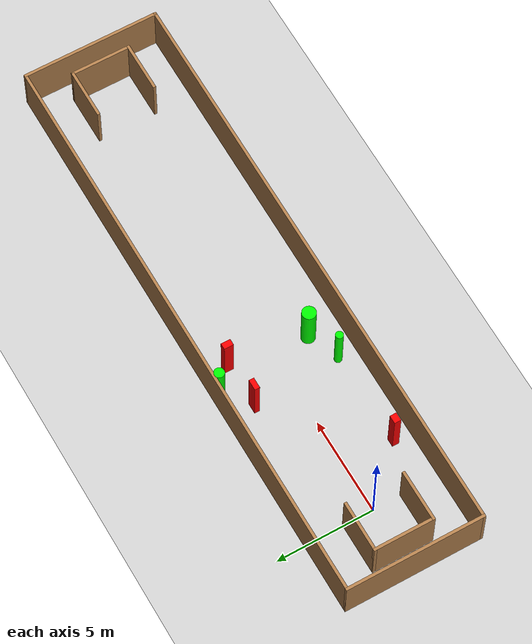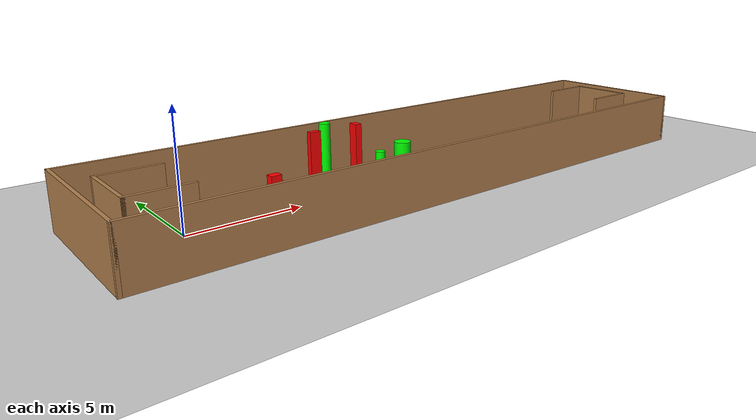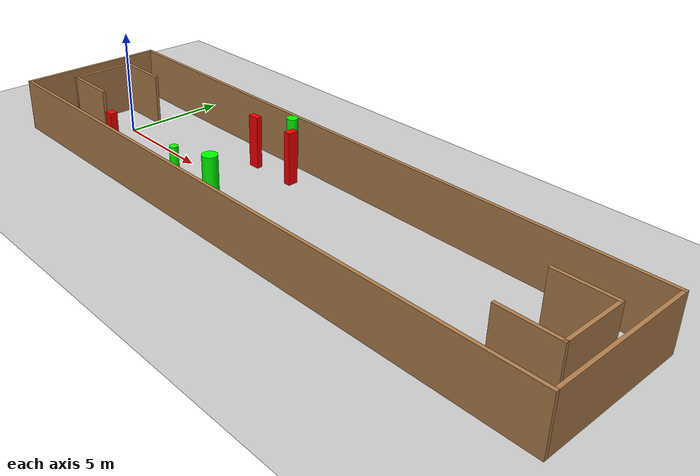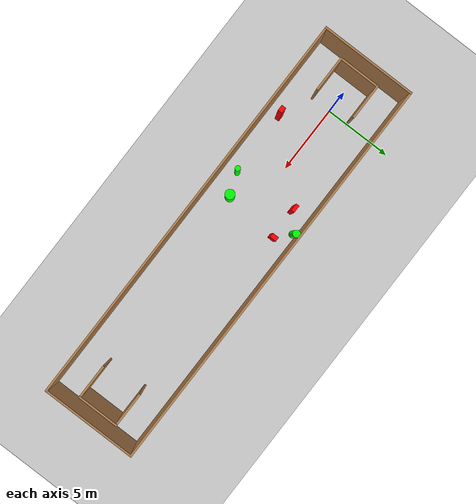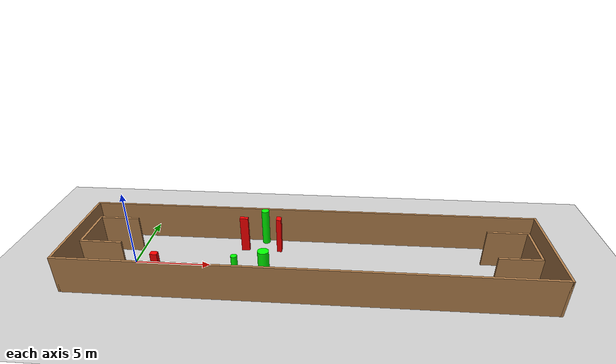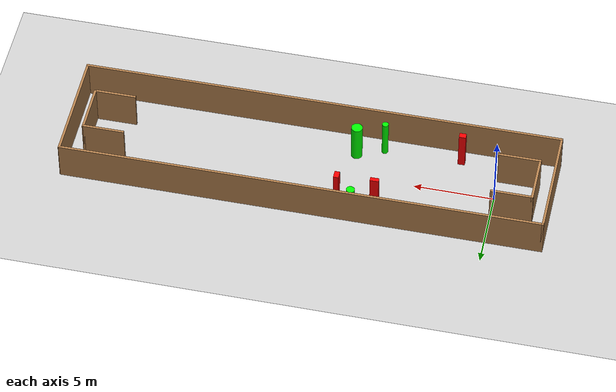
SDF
<sdf version="1.7">
 <world name="default">
  <light name="sun" type="directional">
   <pose>0 0 10 0 -0 0</pose>
   <diffuse>0.8 0.8 0.8 1</diffuse>
   <specular>0.2 0.2 0.2 1</specular>
   <attenuation>
    <range>1000</range>
    <constant>0.9</constant>
    <linear>0.01</linear>
    <quadratic>0.001</quadratic>
   </attenuation>
   <direction>-0.5 0.1 -0.9</direction>
   <spot><inner_angle>0</inner_angle><outer_angle>0</outer_angle><falloff>0</falloff></spot>
  </light>
  <model name="ground_plane">
   <static>1</static>
   <link name="link">
    <collision name="collision">
     <geometry><plane><normal>0 0 1</normal><size>100 100</size></plane></geometry>
     <surface>
      <contact><collide_bitmask>65535</collide_bitmask></contact>
      <friction><ode><mu>100</mu><mu2>50</mu2></ode></friction>
     </surface>
    </collision>
    <visual name="visual">
     <cast_shadows>0</cast_shadows>
     <geometry><plane><normal>0 0 1</normal><size>100 100</size></plane></geometry>
     <material>
      <script><uri>file://media/materials/scripts/gazebo.material</uri><name>Gazebo/Grey</name></script>
     </material>
    </visual>
   </link>
  </model>
  <gravity>0 0 -9.8</gravity>
  <magnetic_field>6e-06 2.3e-05 -4.2e-05</magnetic_field>
  <atmosphere type="adiabatic"/>
  <physics type="ode">
   <max_step_size>0.001</max_step_size>
   <real_time_factor>1</real_time_factor>
   <real_time_update_rate>1000</real_time_update_rate>
  </physics>
  <scene><ambient>0.4 0.4 0.4 1</ambient><background>0.7 0.7 0.7 1</background><shadows>1</shadows></scene>
  <spherical_coordinates>
   <surface_model>EARTH_WGS84</surface_model>
   <latitude_deg>0</latitude_deg>
   <longitude_deg>0</longitude_deg>
   <elevation>0</elevation>
   <heading_deg>0</heading_deg>
  </spherical_coordinates>
  <model name="my_base_walls">
   <link name="Wall_0">
    <collision name="Wall_0_Collision">
     <geometry><box><size>7.15 0.15 2.5</size></box></geometry>
     <pose>0 0 1.25 0 -0 0</pose>
    </collision>
    <visual name="Wall_0_Visual">
     <pose>0 0 1.25 0 -0 0</pose>
     <geometry><box><size>7.15 0.15 2.5</size></box></geometry>
     <material>
      <script><uri>file://media/materials/scripts/gazebo.material</uri><name>Gazebo/Wood</name></script>
      <ambient>1 1 1 1</ambient>
     </material>
     <meta><layer>0</layer></meta>
    </visual>
    <pose>-15 0 0 0 -0 1.5708</pose>
   </link>
   <link name="Wall_10">
    <collision name="Wall_10_Collision">
     <geometry><box><size>2.65 0.15 2.5</size></box></geometry>
     <pose>0 0 1.25 0 -0 0</pose>
    </collision>
    <visual name="Wall_10_Visual">
     <pose>0 0 1.25 0 -0 0</pose>
     <geometry><box><size>2.65 0.15 2.5</size></box></geometry>
     <material>
      <script><uri>file://media/materials/scripts/gazebo.material</uri><name>Gazebo/Wood</name></script>
      <ambient>1 1 1 1</ambient>
     </material>
     <meta><layer>0</layer></meta>
    </visual>
    <pose>-12.75 -1.5 0 0 -0 0</pose>
   </link>
   <link name="Wall_12">
    <collision name="Wall_12_Collision">
     <geometry><box><size>2.65 0.15 2.5</size></box></geometry>
     <pose>0 0 1.25 0 -0 0</pose>
    </collision>
    <visual name="Wall_12_Visual">
     <pose>0 0 1.25 0 -0 0</pose>
     <geometry><box><size>2.65 0.15 2.5</size></box></geometry>
     <material>
      <script><uri>file://media/materials/scripts/gazebo.material</uri><name>Gazebo/Wood</name></script>
      <ambient>1 1 1 1</ambient>
     </material>
     <meta><layer>0</layer></meta>
    </visual>
    <pose>-12.75 1.5 0 0 -0 0</pose>
   </link>
   <link name="Wall_14">
    <collision name="Wall_14_Collision">
     <geometry><box><size>3.15 0.15 2.5</size></box></geometry>
     <pose>0 0 1.25 0 -0 0</pose>
    </collision>
    <visual name="Wall_14_Visual">
     <pose>0 0 1.25 0 -0 0</pose>
     <geometry><box><size>3.15 0.15 2.5</size></box></geometry>
     <material>
      <script><uri>file://media/materials/scripts/gazebo.material</uri><name>Gazebo/Wood</name></script>
      <ambient>1 1 1 1</ambient>
     </material>
     <meta><layer>0</layer></meta>
    </visual>
    <pose>14 0 0 0 -0 -1.5708</pose>
   </link>
   <link name="Wall_15">
    <collision name="Wall_15_Collision">
     <geometry><box><size>2.65 0.15 2.5</size></box></geometry>
     <pose>0 0 1.25 0 -0 0</pose>
    </collision>
    <visual name="Wall_15_Visual">
     <pose>0 0 1.25 0 -0 0</pose>
     <geometry><box><size>2.65 0.15 2.5</size></box></geometry>
     <material>
      <script><uri>file://media/materials/scripts/gazebo.material</uri><name>Gazebo/Wood</name></script>
      <ambient>1 1 1 1</ambient>
     </material>
     <meta><layer>0</layer></meta>
    </visual>
    <pose>12.75 -1.5 0 0 -0 3.14159</pose>
   </link>
   <link name="Wall_17">
    <collision name="Wall_17_Collision">
     <geometry><box><size>2.65 0.15 2.5</size></box></geometry>
     <pose>0 0 1.25 0 -0 0</pose>
    </collision>
    <visual name="Wall_17_Visual">
     <pose>0 0 1.25 0 -0 0</pose>
     <geometry><box><size>2.65 0.15 2.5</size></box></geometry>
     <material>
      <script><uri>file://media/materials/scripts/gazebo.material</uri><name>Gazebo/Wood</name></script>
      <ambient>1 1 1 1</ambient>
     </material>
     <meta><layer>0</layer></meta>
    </visual>
    <pose>12.75 1.5 0 0 -0 3.14159</pose>
   </link>
   <link name="Wall_2">
    <collision name="Wall_2_Collision">
     <geometry><box><size>30.15 0.15 2.5</size></box></geometry>
     <pose>0 0 1.25 0 -0 0</pose>
    </collision>
    <visual name="Wall_2_Visual">
     <pose>0 0 1.25 0 -0 0</pose>
     <geometry><box><size>30.15 0.15 2.5</size></box></geometry>
     <material>
      <script><uri>file://media/materials/scripts/gazebo.material</uri><name>Gazebo/Wood</name></script>
      <ambient>1 1 1 1</ambient>
     </material>
     <meta><layer>0</layer></meta>
    </visual>
    <pose>-0 -3.5 0 0 -0 0</pose>
   </link>
   <link name="Wall_4">
    <collision name="Wall_4_Collision">
     <geometry><box><size>30.15 0.15 2.5</size></box></geometry>
     <pose>0 0 1.25 0 -0 0</pose>
    </collision>
    <visual name="Wall_4_Visual">
     <pose>0 0 1.25 0 -0 0</pose>
     <geometry><box><size>30.15 0.15 2.5</size></box></geometry>
     <material>
      <script><uri>file://media/materials/scripts/gazebo.material</uri><name>Gazebo/Wood</name></script>
      <ambient>1 1 1 1</ambient>
     </material>
     <meta><layer>0</layer></meta>
    </visual>
    <pose>-0 3.5 0 0 -0 0</pose>
   </link>
   <link name="Wall_6">
    <collision name="Wall_6_Collision">
     <geometry><box><size>7.15 0.15 2.5</size></box></geometry>
     <pose>0 0 1.25 0 -0 0</pose>
    </collision>
    <visual name="Wall_6_Visual">
     <pose>0 0 1.25 0 -0 0</pose>
     <geometry><box><size>7.15 0.15 2.5</size></box></geometry>
     <material>
      <script><uri>file://media/materials/scripts/gazebo.material</uri><name>Gazebo/Wood</name></script>
      <ambient>1 1 1 1</ambient>
     </material>
     <meta><layer>0</layer></meta>
    </visual>
    <pose>15 0 0 0 -0 -1.5708</pose>
   </link>
   <link name="Wall_9">
    <collision name="Wall_9_Collision">
     <geometry><box><size>3.15 0.15 2.5</size></box></geometry>
     <pose>0 0 1.25 0 -0 0</pose>
    </collision>
    <visual name="Wall_9_Visual">
     <pose>0 0 1.25 0 -0 0</pose>
     <geometry><box><size>3.15 0.15 2.5</size></box></geometry>
     <material>
      <script><uri>file://media/materials/scripts/gazebo.material</uri><name>Gazebo/Wood</name></script>
      <ambient>1 1 1 1</ambient>
     </material>
     <meta><layer>0</layer></meta>
    </visual>
    <pose>-14 0 0 0 -0 -1.5708</pose>
   </link>
   <static>1</static>
   <pose>11.5 0 0 0 -0 0</pose>
  </model>
  <model name="cylinder1">
   <static>1</static>
   <link name="link">
    <inertial>
     <mass>1</mass>
     <inertia><ixx>0.5</ixx><ixy>0</ixy><ixz>0</ixz><iyy>0.5</iyy><iyz>0</iyz><izz>1</izz></inertia>
    </inertial>
    <collision name="collision">
     <geometry><cylinder><radius>0.19582866850449376</radius><length>2.5</length></cylinder></geometry>
    </collision>
    <visual name="visual">
     <geometry><cylinder><radius>0.19582866850449376</radius><length>2.5</length></cylinder></geometry>
     <material>
      <ambient>0 1 0 1</ambient>
      <diffuse>0 1 0 1</diffuse>
      <specular>0.1 0.1 0.1 1</specular>
      <emissive>0 0 0 0</emissive>
     </material>
    </visual>
   </link>
   <pose>7.322826446150076 -2.4703198645869158 1.25 0 0 0</pose>
  </model>
  <model name="cylinder2">
   <static>1</static>
   <link name="link">
    <inertial>
     <mass>1</mass>
     <inertia><ixx>0.5</ixx><ixy>0</ixy><ixz>0</ixz><iyy>0.5</iyy><iyz>0</iyz><izz>1</izz></inertia>
    </inertial>
    <collision name="collision">
     <geometry><cylinder><radius>0.3496645876836389</radius><length>2.5</length></cylinder></geometry>
    </collision>
    <visual name="visual">
     <geometry><cylinder><radius>0.3496645876836389</radius><length>2.5</length></cylinder></geometry>
     <material>
      <ambient>0 1 0 1</ambient>
      <diffuse>0 1 0 1</diffuse>
      <specular>0.1 0.1 0.1 1</specular>
      <emissive>0 0 0 0</emissive>
     </material>
    </visual>
   </link>
   <pose>8.979889976322378 -1.8363216715856714 1.25 0 0 0</pose>
  </model>
  <model name="cylinder3">
   <static>1</static>
   <link name="link">
    <inertial>
     <mass>1</mass>
     <inertia><ixx>0.5</ixx><ixy>0</ixy><ixz>0</ixz><iyy>0.5</iyy><iyz>0</iyz><izz>1</izz></inertia>
    </inertial>
    <collision name="collision">
     <geometry><cylinder><radius>0.2619988485622071</radius><length>2.5</length></cylinder></geometry>
    </collision>
    <visual name="visual">
     <geometry><cylinder><radius>0.2619988485622071</radius><length>2.5</length></cylinder></geometry>
     <material>
      <ambient>0 1 0 1</ambient>
      <diffuse>0 1 0 1</diffuse>
      <specular>0.1 0.1 0.1 1</specular>
      <emissive>0 0 0 0</emissive>
     </material>
    </visual>
   </link>
   <pose>8.363735371160395 3.2070571349379424 1.25 0 0 0</pose>
  </model>
  <model name="box1">
   <static>1</static>
   <link name="link">
    <inertial>
     <mass>1</mass>
     <inertia><ixx>0.083</ixx><ixy>0</ixy><ixz>0</ixz><iyy>0.083</iyy><iyz>0</iyz><izz>0.083</izz></inertia>
    </inertial>
    <collision name="collision">
     <geometry><box><size>0.426795847147773 0.3425359726683691 2.5</size></box></geometry>
    </collision>
    <visual name="visual">
     <geometry><box><size>0.426795847147773 0.3425359726683691 2.5</size></box></geometry>
     <material>
      <ambient>1 0 0 1</ambient>
      <diffuse>1 0 0 1</diffuse>
      <specular>0.1 0.1 0.1 1</specular>
      <emissive>0 0 0 0</emissive>
     </material>
    </visual>
    <sensor name="my_contact" type="contact">
     <contact><collision>box_collision</collision><topic>__default_topic__</topic></contact>
    </sensor>
   </link>
   <pose>2.494214008451239 -2.541386653349551 1.25 0 0 0</pose>
  </model>
  <model name="box2">
   <static>1</static>
   <link name="link">
    <inertial>
     <mass>1</mass>
     <inertia><ixx>0.083</ixx><ixy>0</ixy><ixz>0</ixz><iyy>0.083</iyy><iyz>0</iyz><izz>0.083</izz></inertia>
    </inertial>
    <collision name="collision">
     <geometry><box><size>0.32509791324894416 0.48381900385778087 2.5</size></box></geometry>
    </collision>
    <visual name="visual">
     <geometry><box><size>0.32509791324894416 0.48381900385778087 2.5</size></box></geometry>
     <material>
      <ambient>1 0 0 1</ambient>
      <diffuse>1 0 0 1</diffuse>
      <specular>0.1 0.1 0.1 1</specular>
      <emissive>0 0 0 0</emissive>
     </material>
    </visual>
    <sensor name="my_contact" type="contact">
     <contact><collision>box_collision</collision><topic>__default_topic__</topic></contact>
    </sensor>
   </link>
   <pose>9.42978837436431 2.189367897950506 1.25 0 0 0</pose>
  </model>
  <model name="box3">
   <static>1</static>
   <link name="link">
    <inertial>
     <mass>1</mass>
     <inertia><ixx>0.083</ixx><ixy>0</ixy><ixz>0</ixz><iyy>0.083</iyy><iyz>0</iyz><izz>0.083</izz></inertia>
    </inertial>
    <collision name="collision">
     <geometry><box><size>0.5499782711535053 0.2627477895035024 2.5</size></box></geometry>
    </collision>
    <visual name="visual">
     <geometry><box><size>0.5499782711535053 0.2627477895035024 2.5</size></box></geometry>
     <material>
      <ambient>1 0 0 1</ambient>
      <diffuse>1 0 0 1</diffuse>
      <specular>0.1 0.1 0.1 1</specular>
      <emissive>0 0 0 0</emissive>
     </material>
    </visual>
    <sensor name="my_contact" type="contact">
     <contact><collision>box_collision</collision><topic>__default_topic__</topic></contact>
    </sensor>
   </link>
   <pose>7.093409697449321 2.110177095244352 1.25 0 0 0</pose>
  </model>
 </world>
</sdf>
